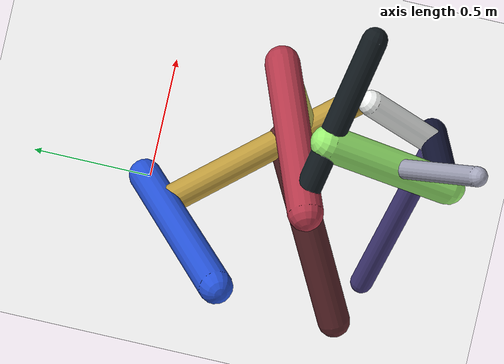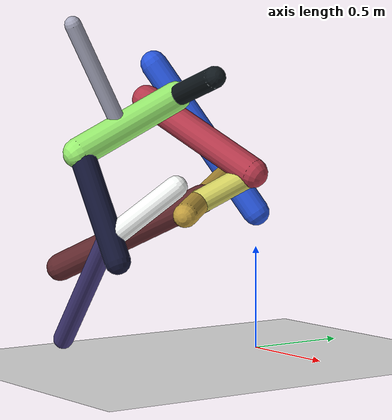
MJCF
<mujoco model="morphology">
  <option timestep="0.01"/>
  <default>
    <default class="/"/>
    <default class="0/"/>
    <default class="0/1/"/>
    <default class="0/1/2/"/>
    <default class="0/1/3/"/>
    <default class="0/1/3/4/"/>
    <default class="0/1/3/4/5/"/>
    <default class="0/1/3/4/5/6/"/>
    <default class="0/1/3/4/5/6/7/"/>
    <default class="0/1/3/4/5/6/7/8/"/>
    <default class="0/1/3/4/5/6/7/9/"/>
    <default class="0/1/3/4/5/6/10/"/>
  </default>
  <asset>
    <texture name="texplane" type="2d" builtin="checker" rgb1="0.10000000000000001 0.20000000000000001 0.29999999999999999" rgb2="0.20000000000000001 0.29999999999999999 0.40000000000000002" width="300" height="300"/>
    <material name="MatPlane" class="/" texture="texplane" texrepeat="20 20" specular="1" shininess="1" reflectance="0.5"/>
  </asset>
  <worldbody>
    <light name="//unnamed_light_0" class="/" directional="true" pos="0 0 1.5" dir="0 0 -1.3" cutoff="100" exponent="1" diffuse="1 1 1" specular="0.10000000000000001 0.10000000000000001 0.10000000000000001"/>
    <geom name="ground" class="/" type="plane" size="15 15 0.5" material="MatPlane" rgba="1 1 1 1"/>
    <site name="body" class="/" size="9.9999999999999995e-07 9.9999999999999995e-07 9.9999999999999995e-07" pos="0 0 0.66863611936569212"/>
    <body pos="0 0 0.66863611936569212" name="0/">
      <freejoint name="0/"/>
      <geom name="0/geom" class="0/" type="capsule" contype="1" conaffinity="1" condim="3" size="0.06564381671500738" rgba="0.15383043255148587 0.33624940332212327 0.86790138595058719 1" friction="0.59999999999999998 0.10000000000000001 0.10000000000000001" fromto="0 0 0 -0.3429734115380304 -0.36938453892903345 0.72094680869861461"/>
      <site name="0/end0" class="0/" size="0.0050000000000000001" pos="-0.3429734115380304 -0.36938453892903345 0.72094680869861461"/>
      <site name="0/attach1" class="0/" size="9.9999999999999995e-07 9.9999999999999995e-07 9.9999999999999995e-07" pos="-0.090926905557895482 -0.097928853829016768 0.19113278225515221"/>
      <body pos="-0.090926905557895482 -0.097928853829016768 0.19113278225515221" name="0/1/">
        <joint name="0/1/joint/" class="0/" type="hinge" axis="0 1 0" limited="true" range="-52.339654134814438 52.339654134814438"/>
        <geom name="0/1/geom" class="0/1/" type="capsule" contype="1" conaffinity="1" condim="3" size="0.055686140586503417" rgba="0.76198838782894662 0.62336404002963053 0.24531223156732751 1" friction="0.59999999999999998 0.10000000000000001 0.10000000000000001" fromto="0 0 0 0.56085965714538766 -0.65359544755692323 -0.13167373128594817"/>
        <site name="0/1/end1" class="0/1/" size="0.0050000000000000001" pos="0.56085965714538766 -0.65359544755692323 -0.13167373128594817"/>
        <site name="0/1/attach2" class="0/1/" size="9.9999999999999995e-07 9.9999999999999995e-07 9.9999999999999995e-07" pos="0.34977451161816553 -0.4076082591296416 -0.082117004613767905"/>
        <body pos="0.34977451161816553 -0.4076082591296416 -0.082117004613767905" name="0/1/2/">
          <joint name="0/1/2/joint/" class="0/1/" type="hinge" axis="0.76524741219210346 0.63105747980533144 0.12713321877083308" limited="true" range="-54.889833920895114 54.889833920895114"/>
          <geom name="0/1/2/geom" class="0/1/2/" type="capsule" contype="1" conaffinity="1" condim="3" size="0.066344409161108439" rgba="0.37522349897211771 0.15736074166835823 0.17640344888469839 1" friction="0.59999999999999998 0.10000000000000001 0.10000000000000001" fromto="0 0 0 -0.6674646470517791 -0.36481360174054667 -0.36005047201884999"/>
          <site name="0/1/2/end2" class="0/1/2/" size="0.0050000000000000001" pos="-0.6674646470517791 -0.36481360174054667 -0.36005047201884999"/>
        </body>
        <site name="0/1/attach3" class="0/1/" size="9.9999999999999995e-07 9.9999999999999995e-07 9.9999999999999995e-07" pos="0.40514796498131822 -0.47213748060702176 -0.095117100316184769"/>
        <body pos="0.40514796498131822 -0.47213748060702176 -0.095117100316184769" name="0/1/3/">
          <joint name="0/1/3/joint/" class="0/1/" type="hinge" axis="0.76524741219210346 0.63105747980533144 0.12713321877083308" limited="true" range="-43.054080269495884 43.054080269495884"/>
          <geom name="0/1/3/geom" class="0/1/3/" type="capsule" contype="1" conaffinity="1" condim="3" size="0.05575762566337765" rgba="0.82629965014165163 0.81534706188512596 0.37485938829720811 1" friction="0.59999999999999998 0.10000000000000001 0.10000000000000001" fromto="0 0 0 0.23411907484601457 0.14339965607363148 0.14903181315543823"/>
          <site name="0/1/3/end3" class="0/1/3/" size="0.0050000000000000001" pos="0.23411907484601457 0.14339965607363148 0.14903181315543823"/>
          <site name="0/1/3/attach4" class="0/1/3/" size="9.9999999999999995e-07 9.9999999999999995e-07 9.9999999999999995e-07" pos="0.22905962251033402 0.1403007042887984 0.14581114710908585"/>
          <body pos="0.22905962251033402 0.1403007042887984 0.14581114710908585" name="0/1/3/4/">
            <joint name="0/1/3/4/joint/" class="0/1/3/" type="hinge" axis="-0.6620588366741712 0.5196395671295011 0.54004890246634907" limited="true" range="-63.987858382502523 63.987858382502523"/>
            <geom name="0/1/3/4/geom" class="0/1/3/4/" type="capsule" contype="1" conaffinity="1" condim="3" size="0.069495713005415127" rgba="0.71052946313546284 0.22201057810340086 0.29589315644187686 1" friction="0.59999999999999998 0.10000000000000001 0.10000000000000001" fromto="0 0 0 -0.54726705505015039 -0.20867250033811358 0.31953143959385955"/>
            <site name="0/1/3/4/end4" class="0/1/3/4/" size="0.0050000000000000001" pos="-0.54726705505015039 -0.20867250033811358 0.31953143959385955"/>
            <site name="0/1/3/4/attach5" class="0/1/3/4/" size="9.9999999999999995e-07 9.9999999999999995e-07 9.9999999999999995e-07" pos="-0.49761262676425988 -0.18973930564338301 0.29053983338261646"/>
            <body pos="-0.49761262676425988 -0.18973930564338301 0.29053983338261646" name="0/1/3/4/5/">
              <joint name="0/1/3/4/5/joint/" class="0/1/3/4/" type="hinge" axis="0.57199995184452623 -0.44850394671347643 0.68677526518672405" limited="true" range="-36.18671129259922 36.18671129259922"/>
              <geom name="0/1/3/4/5/geom" class="0/1/3/4/5/" type="capsule" contype="1" conaffinity="1" condim="3" size="0.049936837388244462" rgba="0.069587457315198442 0.10026321836187824 0.11801060974991784 1" friction="0.59999999999999998 0.10000000000000001 0.10000000000000001" fromto="0 0 0 0.63672819433503269 -0.12425063007698012 0.1484053311256549"/>
              <site name="0/1/3/4/5/end5" class="0/1/3/4/5/" size="0.0050000000000000001" pos="0.63672819433503269 -0.12425063007698012 0.1484053311256549"/>
              <site name="0/1/3/4/5/attach6" class="0/1/3/4/5/" size="9.9999999999999995e-07 9.9999999999999995e-07 9.9999999999999995e-07" pos="0.22712729301527529 -0.04432143812054553 0.052937660727914504"/>
              <body pos="0.22712729301527529 -0.04432143812054553 0.052937660727914504" name="0/1/3/4/5/6/">
                <joint name="0/1/3/4/5/6/joint/" class="0/1/3/4/5/" type="hinge" axis="0.29083857816578429 0.61419962144448936 -0.73360189917144525" limited="true" range="-36.513953482297971 36.513953482297971"/>
                <geom name="0/1/3/4/5/6/geom" class="0/1/3/4/5/6/" type="capsule" contype="1" conaffinity="1" condim="3" size="0.069469339930354826" rgba="0.61148352173133813 0.94675228248819532 0.44545638413306121 1" friction="0.59999999999999998 0.10000000000000001 0.10000000000000001" fromto="0 0 0 -0.056594822220890628 -0.49094506068916804 -0.2441152598113594"/>
                <site name="0/1/3/4/5/6/end6" class="0/1/3/4/5/6/" size="0.0050000000000000001" pos="-0.056594822220890628 -0.49094506068916804 -0.2441152598113594"/>
                <site name="0/1/3/4/5/6/attach7" class="0/1/3/4/5/6/" size="9.9999999999999995e-07 9.9999999999999995e-07 9.9999999999999995e-07" pos="-0.055125590203861118 -0.47819986292263511 -0.23777789640096714"/>
                <body pos="-0.055125590203861118 -0.47819986292263511 -0.23777789640096714" name="0/1/3/4/5/6/7/">
                  <joint name="0/1/3/4/5/6/7/joint/" class="0/1/3/4/5/6/" type="hinge" axis="0.99471490327862622 -0.091937214688447677 -0.045714437005432346" limited="true" range="-69.822601703148933 69.822601703148933"/>
                  <geom name="0/1/3/4/5/6/7/geom" class="0/1/3/4/5/6/7/" type="capsule" contype="1" conaffinity="1" condim="3" size="0.058951831679437156" rgba="0.077668521030287874 0.087821491188892709 0.21252218940332279 1" friction="0.59999999999999998 0.10000000000000001 0.10000000000000001" fromto="0 0 0 0.20473602330073448 0.060188779644809287 -0.47728198747257244"/>
                  <site name="0/1/3/4/5/6/7/end7" class="0/1/3/4/5/6/7/" size="0.0050000000000000001" pos="0.20473602330073448 0.060188779644809287 -0.47728198747257244"/>
                  <site name="0/1/3/4/5/6/7/attach8" class="0/1/3/4/5/6/7/" size="9.9999999999999995e-07 9.9999999999999995e-07 9.9999999999999995e-07" pos="0.16256993683913337 0.047792693965283538 -0.37898412456658181"/>
                  <body pos="0.16256993683913337 0.047792693965283538 -0.37898412456658181" name="0/1/3/4/5/6/7/8/">
                    <joint name="0/1/3/4/5/6/7/8/joint/" class="0/1/3/4/5/6/7/" type="hinge" axis="-0.92013483650924255 0.048995806738125591 -0.3885245083185746" limited="true" range="-64.802081339162584 64.802081339162584"/>
                    <geom name="0/1/3/4/5/6/7/8/geom" class="0/1/3/4/5/6/7/8/" type="capsule" contype="1" conaffinity="1" condim="3" size="0.051908820513923759" rgba="0.98510890674495888 0.99719600038637046 0.98870702807166777 1" friction="0.59999999999999998 0.10000000000000001 0.10000000000000001" fromto="0 0 0 0.09062974145665037 0.29197435976330621 0.22052129147908317"/>
                    <site name="0/1/3/4/5/6/7/8/end8" class="0/1/3/4/5/6/7/8/" size="0.0050000000000000001" pos="0.09062974145665037 0.29197435976330621 0.22052129147908317"/>
                  </body>
                  <site name="0/1/3/4/5/6/7/attach9" class="0/1/3/4/5/6/7/" size="9.9999999999999995e-07 9.9999999999999995e-07 9.9999999999999995e-07" pos="0.15707385415797245 0.046176942598851384 -0.36617161984422081"/>
                  <body pos="0.15707385415797245 0.046176942598851384 -0.36617161984422081" name="0/1/3/4/5/6/7/9/">
                    <joint name="0/1/3/4/5/6/7/9/joint/" class="0/1/3/4/5/6/7/" type="hinge" axis="-0.92013483650924255 0.048995806738125591 -0.3885245083185746" limited="true" range="-55.304561664993699 55.304561664993699"/>
                    <geom name="0/1/3/4/5/6/7/9/geom" class="0/1/3/4/5/6/7/9/" type="capsule" contype="1" conaffinity="1" condim="3" size="0.047642045798635659" rgba="0.26064107211835774 0.22150900828623499 0.4727315682117138 1" friction="0.59999999999999998 0.10000000000000001 0.10000000000000001" fromto="0 0 0 -0.61000393329258462 0.13445150680375595 -0.54999093668724131"/>
                    <site name="0/1/3/4/5/6/7/9/end9" class="0/1/3/4/5/6/7/9/" size="0.0050000000000000001" pos="-0.61000393329258462 0.13445150680375595 -0.54999093668724131"/>
                  </body>
                </body>
                <site name="0/1/3/4/5/6/attach10" class="0/1/3/4/5/6/" size="9.9999999999999995e-07 9.9999999999999995e-07 9.9999999999999995e-07" pos="-0.032305122303838328 -0.28023836117245632 -0.13934443143330949"/>
                <body pos="-0.032305122303838328 -0.28023836117245632 -0.13934443143330949" name="0/1/3/4/5/6/10/">
                  <joint name="0/1/3/4/5/6/10/joint/" class="0/1/3/4/5/6/" type="hinge" axis="0 -0.44523212186278849 0.89541518730785385" limited="true" range="-44.56108007260579 44.56108007260579"/>
                  <geom name="0/1/3/4/5/6/10/geom" class="0/1/3/4/5/6/10/" type="capsule" contype="1" conaffinity="1" condim="3" size="0.038027652272376561" rgba="0.65674395603225755 0.66331119723651333 0.74449447437280092 1" friction="0.59999999999999998 0.10000000000000001 0.10000000000000001" fromto="0 0 0 0.02658233161920498 -0.26689212372137694 0.46318065481721638"/>
                  <site name="0/1/3/4/5/6/10/end10" class="0/1/3/4/5/6/10/" size="0.0050000000000000001" pos="0.02658233161920498 -0.26689212372137694 0.46318065481721638"/>
                </body>
              </body>
            </body>
          </body>
        </body>
      </body>
      <camera name="0/iso" class="0/" mode="trackcom" pos="-2.2999999999999998 -2.2999999999999998 1" xyaxes="0.45000000000000001 -0.45000000000000001 0 0.29999999999999999 0.14999999999999999 0.93999999999999995"/>
    </body>
  </worldbody>
  <actuator>
    <motor name="0/1/motor" class="0/1/" ctrllimited="true" ctrlrange="-1 1" gear="89" joint="0/1/joint/"/>
    <motor name="0/1/2/motor" class="0/1/2/" ctrllimited="true" ctrlrange="-1 1" gear="55" joint="0/1/2/joint/"/>
    <motor name="0/1/3/motor" class="0/1/3/" ctrllimited="true" ctrlrange="-1 1" gear="61" joint="0/1/3/joint/"/>
    <motor name="0/1/3/4/motor" class="0/1/3/4/" ctrllimited="true" ctrlrange="-1 1" gear="88" joint="0/1/3/4/joint/"/>
    <motor name="0/1/3/4/5/motor" class="0/1/3/4/5/" ctrllimited="true" ctrlrange="-1 1" gear="93" joint="0/1/3/4/5/joint/"/>
    <motor name="0/1/3/4/5/6/motor" class="0/1/3/4/5/6/" ctrllimited="true" ctrlrange="-1 1" gear="78" joint="0/1/3/4/5/6/joint/"/>
    <motor name="0/1/3/4/5/6/7/motor" class="0/1/3/4/5/6/7/" ctrllimited="true" ctrlrange="-1 1" gear="54" joint="0/1/3/4/5/6/7/joint/"/>
    <motor name="0/1/3/4/5/6/7/8/motor" class="0/1/3/4/5/6/7/8/" ctrllimited="true" ctrlrange="-1 1" gear="72" joint="0/1/3/4/5/6/7/8/joint/"/>
    <motor name="0/1/3/4/5/6/7/9/motor" class="0/1/3/4/5/6/7/9/" ctrllimited="true" ctrlrange="-1 1" gear="69" joint="0/1/3/4/5/6/7/9/joint/"/>
    <motor name="0/1/3/4/5/6/10/motor" class="0/1/3/4/5/6/10/" ctrllimited="true" ctrlrange="-1 1" gear="57" joint="0/1/3/4/5/6/10/joint/"/>
  </actuator>
  <sensor>
    <subtreelinvel name="velocity" body="0/"/>
  </sensor>
</mujoco>
